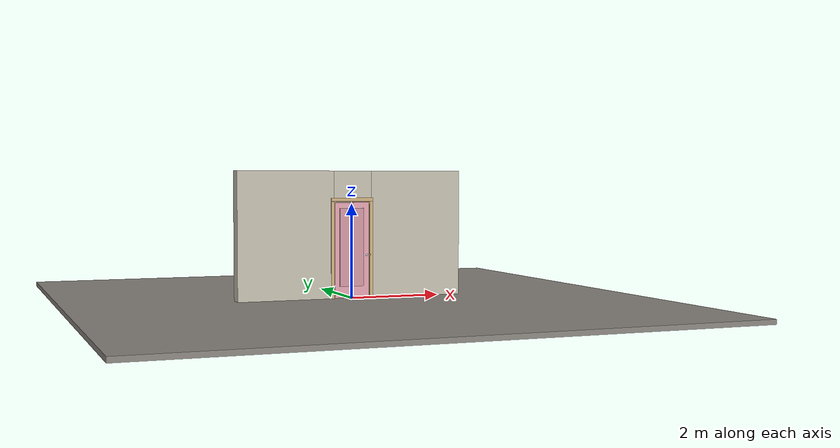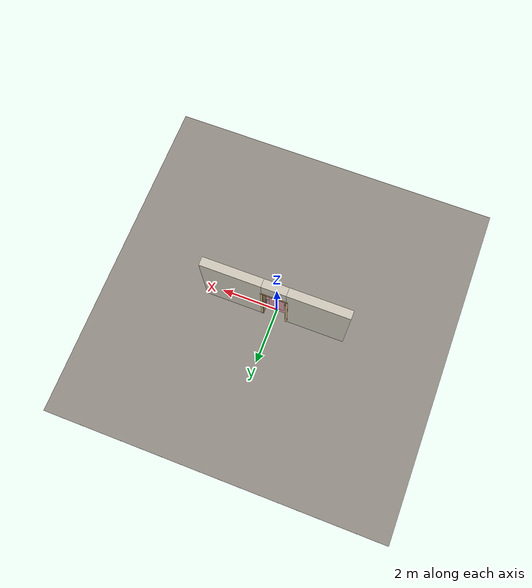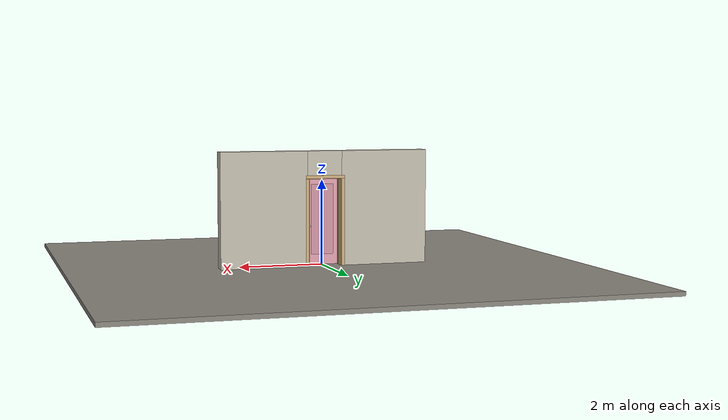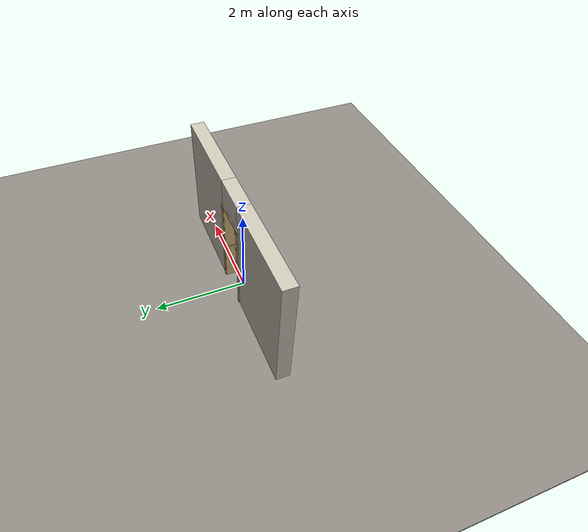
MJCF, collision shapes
<?xml version="1.0" ?>
<mujoco model="db0965_swing_single_full">
  <compiler angle="radian" meshdir="../../hardware" texturedir="../../textures" autolimits="true" inertiafromgeom="false"/>
  <option timestep="0.002" integrator="implicitfast" cone="elliptic" impratio="10" noslip_iterations="3">
    <flag multiccd="enable"/>
  </option>
  <size memory="16M"/>
  <default>
    <geom condim="4" solref="0.005 1" solimp="0.95 0.99 0.001"/>
    <joint solreflimit="0.005 1" solimplimit="0.95 0.99 0.001"/>
    <tendon solreflimit="0.005 1"/>
    <equality solref="0.002 1"/>
  </default>
  <visual>
    <headlight ambient="0.4 0.4 0.4" diffuse="0.7 0.7 0.7" specular="0.2 0.2 0.2"/>
    <quality shadowsize="4096"/>
    <map znear="0.01" zfar="60"/>
  </visual>
  <asset>
    <mesh name="hinge_c20a5829de" file="hinge_c20a5829de.obj"/>
    <mesh name="hinge_jamb_20499e6581" file="hinge_jamb_20499e6581.obj"/>
    <mesh name="knob_98a7916ed0" file="knob_98a7916ed0.obj"/>
    <material name="mat_floor" rgba="0.55 0.53 0.5 1" specular="0.2" shininess="0.15" reflectance="0"/>
    <material name="mat_wall" rgba="0.78 0.76 0.7 1" specular="0.2" shininess="0.1" reflectance="0"/>
    <material name="mat_hinge" rgba="0.55 0.56 0.58 1" specular="0.8" shininess="0.55" reflectance="0.4"/>
    <material name="mat_leaf" rgba="0.9 0.65 0.7 1" specular="0.2" shininess="0.41" reflectance="0"/>
    <material name="mat_leaf_panel" rgba="0.828 0.598 0.644 1" specular="0.2" shininess="0.41" reflectance="0"/>
    <material name="mat_op_glass_clear" rgba="0.85 0.92 0.95 0.25" specular="0.2" shininess="0.95" reflectance="0.1"/>
    <material name="mat_trim" rgba="0.85 0.66 0.3 1" specular="0.8" shininess="0.75" reflectance="0.4"/>
    <material name="mat_bolt" rgba="0.85 0.66 0.3 1" specular="0.8" shininess="0.75" reflectance="0.4"/>
    <material name="mat_frame" rgba="0.82 0.7 0.5 1" specular="0.2" shininess="0.45" reflectance="0"/>
    <texture name="skybox" type="skybox" builtin="gradient" rgb1="0.6 0.7 0.85" rgb2="0.9 0.92 0.95" width="256" height="256"/>
  </asset>
  <worldbody>
    <light name="sun" pos="1.5 -2.5 4" dir="-0.3 0.5 -0.8" directional="true" diffuse="0.8 0.8 0.8" specular="0.3 0.3 0.3" castshadow="true"/>
    <light name="fill" pos="-1.5 2.5 3" dir="0.3 -0.5 -0.7" directional="true" diffuse="0.35 0.35 0.4" castshadow="false"/>
    <camera name="robot_view" pos="0 -2.416687 1.734312" xyaxes="1 0 0 0 0.26963 0.962964" fovy="52"/>
    <camera name="far_view" pos="0 2.667687 1.734312" xyaxes="-1 0 0 0 -0.26963 0.962964" fovy="52"/>
    <camera name="iso" pos="1.932062 -2.009937 2.141063" xyaxes="0.741536 0.670913 0 -0.242917 0.268487 0.932151" fovy="46"/>
    <camera name="detail_handle" pos="0.5005 -0.8625 1.194" xyaxes="0.97561 0.219512 0 -0.070934 0.315262 0.94635" fovy="38"/>
    <geom name="floor" type="box" size="6 6 0.05" pos="0 0 -0.05" material="mat_floor" group="0" contype="1" conaffinity="1" friction="0.8 0.005 0.0001" density="2400"/>
    <geom name="wall_left" type="box" size="1.04825 0.15 1.35" pos="-1.45175 0.1255 1.35" material="mat_wall" group="0" contype="1" conaffinity="1" friction="0.6 0.005 0.0001" density="800"/>
    <geom name="wall_right" type="box" size="1.03325 0.15 1.35" pos="1.46675 0.1255 1.35" material="mat_wall" group="0" contype="1" conaffinity="1" friction="0.6 0.005 0.0001" density="800"/>
    <geom name="wall_header" type="box" size="0.4185 0.15 0.303" pos="0.015 0.1255 2.397" material="mat_wall" group="0" contype="1" conaffinity="1" friction="0.6 0.005 0.0001" density="800"/>
    <geom name="hinge_0_jamb" type="mesh" mesh="hinge_jamb_20499e6581" pos="-0.3815 -0.0245 0.259" material="mat_hinge" group="1" contype="0" conaffinity="0" density="7850"/>
    <geom name="hinge_1_jamb" type="mesh" mesh="hinge_jamb_20499e6581" pos="-0.3815 -0.0245 1.8506" material="mat_hinge" group="1" contype="0" conaffinity="0" density="7850"/>
    <geom name="jamb_hinge" type="box" size="0.0095 0.15 1.0225" pos="-0.394 0.1255 1.0225" material="mat_frame" group="0" contype="1" conaffinity="1" friction="0.6 0.005 0.0001" density="400"/>
    <geom name="strike_914_wall_n" type="box" size="0.0245 0.133825 0.0167" pos="0.409 0.141675 0.914" material="mat_frame" group="0" contype="1" conaffinity="1" friction="0.6 0.005 0.0001" density="400"/>
    <geom name="strike_914_wall_p" type="box" size="0.0245 0.008 0.0167" pos="0.409 -0.01585 0.914" material="mat_frame" group="0" contype="1" conaffinity="1" friction="0.6 0.005 0.0001" density="400"/>
    <geom name="strike_914_ramp" type="box" size="0.0245 0.01649 0.0167" pos="0.413636 -0.028673 0.914" quat="0.977148 0 0 0.212558" material="mat_frame" group="0" contype="1" conaffinity="1" friction="0.12 0.005 0.0001" density="400"/>
    <geom name="strike_914_back" type="box" size="0.01615 0.00785 0.0167" pos="0.41735 0 0.914" material="mat_frame" group="0" contype="1" conaffinity="1" friction="0.6 0.005 0.0001" density="400"/>
    <geom name="jamb_strike_0" type="box" size="0.0245 0.15 0.44865" pos="0.409 0.1255 0.44865" material="mat_frame" group="0" contype="1" conaffinity="1" friction="0.6 0.005 0.0001" density="400"/>
    <geom name="jamb_strike_1" type="box" size="0.0245 0.15 0.55715" pos="0.409 0.1255 1.48785" material="mat_frame" group="0" contype="1" conaffinity="1" friction="0.6 0.005 0.0001" density="400"/>
    <geom name="jamb_head" type="box" size="0.4185 0.15 0.0095" pos="0.015 0.1255 2.0545" material="mat_frame" group="0" contype="1" conaffinity="1" friction="0.6 0.005 0.0001" density="400"/>
    <geom name="head_stud" type="box" size="0.4185 0.15 0.015" pos="0.015 0.1255 2.079" material="mat_wall" group="0" contype="1" conaffinity="1" friction="0.6 0.005 0.0001" density="500"/>
    <geom name="stop_hinge" type="box" size="0.0055 0.016 1.0225" pos="-0.379 0.034 1.0225" material="mat_frame" group="0" contype="1" conaffinity="1" friction="0.6 0.005 0.0001" density="400"/>
    <geom name="stop_strike" type="box" size="0.0055 0.016 1.0225" pos="0.379 0.034 1.0225" material="mat_frame" group="0" contype="1" conaffinity="1" friction="0.6 0.005 0.0001" density="400"/>
    <geom name="stop_head" type="box" size="0.3845 0.016 0.0055" pos="0 0.034 2.0395" material="mat_frame" group="0" contype="1" conaffinity="1" friction="0.6 0.005 0.0001" density="400"/>
    <geom name="casing_l_n" type="box" size="0.035 0.008 1.032" pos="-0.4335 -0.0325 1.0225" material="mat_frame" group="2" contype="0" conaffinity="0" density="400"/>
    <geom name="casing_r_n" type="box" size="0.035 0.008 1.032" pos="0.4335 -0.0325 1.0225" material="mat_frame" group="2" contype="0" conaffinity="0" density="400"/>
    <geom name="casing_h_n" type="box" size="0.4685 0.008 0.035" pos="0 -0.0325 2.094" material="mat_frame" group="2" contype="0" conaffinity="0" density="400"/>
    <geom name="casing_l_p" type="box" size="0.035 0.008 1.032" pos="-0.4335 0.2835 1.0225" material="mat_frame" group="2" contype="0" conaffinity="0" density="400"/>
    <geom name="casing_r_p" type="box" size="0.035 0.008 1.032" pos="0.4335 0.2835 1.0225" material="mat_frame" group="2" contype="0" conaffinity="0" density="400"/>
    <geom name="casing_h_p" type="box" size="0.4685 0.008 0.035" pos="0 0.2835 2.094" material="mat_frame" group="2" contype="0" conaffinity="0" density="400"/>
    <site name="approach_point" pos="0 -1.5 0" quat="1 0 0 0" size="0.05" rgba="0.2 0.9 0.2 0.5" group="4"/>
    <site name="goal_point" pos="0 1.5 0" quat="1 0 0 0" size="0.05" rgba="0.2 0.9 0.2 0.5" group="4"/>
    <site name="door_plane_center" pos="0 0 1.0225" quat="1 0 0 0" size="0.02" rgba="0.2 0.9 0.2 0.5" group="4"/>
    <body name="leaf_riser" pos="-0.3845 0 0">
      <inertial pos="0.003 -0.0245 0.055" mass="0.174012" quat="0.707107 0 0.707107 0" diaginertia="0.000017053 0.00002732 0.00002732"/>
      <joint name="leaf_rise" type="slide" axis="0 0 1" limited="true" range="0 0.0176" damping="1" armature="0.5"/>
      <geom name="leaf_riser_marker" type="cylinder" size="0.014 0.018" pos="0.003 -0.0245 0.055" material="mat_hinge" group="1" contype="0" conaffinity="0" density="7850"/>
      <body name="leaf" pos="0 0 0">
        <inertial pos="0.37154 -0.000562 1.020917" mass="11.151307" quat="-0.499412 0.501397 -0.498574 -0.500612" diaginertia="0.576749085 3.904845357 4.479092458"/>
        <joint name="leaf_hinge" type="hinge" axis="0 0 -1" pos="0.003 -0.0245 0" limited="true" range="0 1.919862" damping="0.173726" frictionloss="6.282233" armature="0.02"/>
        <geom name="leaf_slab" type="box" size="0.381 0.0175 1.0108" pos="0.384 0 1.0198" material="mat_leaf" group="0" contype="1" conaffinity="1" friction="0.35 0.005 0.0001" density="1"/>
        <geom name="leaf_panel_0_n" type="box" size="0.271 0.003 0.829072" pos="0.384 -0.0205 1.080448" material="mat_leaf_panel" group="1" contype="0" conaffinity="0" density="1"/>
        <geom name="leaf_panel_0_p" type="box" size="0.271 0.003 0.829072" pos="0.384 0.0205 1.080448" material="mat_leaf_panel" group="1" contype="0" conaffinity="0" density="1"/>
        <geom name="hinge_0" type="mesh" mesh="hinge_c20a5829de" pos="0.003 -0.0245 0.259" material="mat_hinge" group="1" contype="0" conaffinity="0" density="7850"/>
        <geom name="hinge_1" type="mesh" mesh="hinge_c20a5829de" pos="0.003 -0.0245 1.8506" material="mat_hinge" group="1" contype="0" conaffinity="0" density="7850"/>
        <geom name="leaf_latch_bolt_faceplate" type="box" size="0.0006 0.01235 0.0267" pos="0.7644 0 0.914" material="mat_bolt" group="1" contype="0" conaffinity="0" density="8500"/>
        <site name="leaf_edge_mid" pos="0.765 0 1.0108" quat="1 0 0 0" size="0.02" rgba="0.2 0.9 0.2 0.5" group="4"/>
        <body name="leaf_handle" pos="0.705 0 0.914">
          <inertial pos="0 0.000502 0" mass="0.969385" quat="-0.5 0.5 -0.5 0.5" diaginertia="0.000215241 0.003035929 0.003035929"/>
          <joint name="leaf_handle_hinge" type="hinge" axis="0 -1 0" limited="true" range="0 0.07" damping="0.119588" frictionloss="0.032" stiffness="0.35" springref="-0.428571" armature="0.01"/>
          <geom name="leaf_handle_spindle" type="cylinder" size="0.006 0.0255" pos="0 0 0" quat="0.707107 -0.707107 0 0" material="mat_op_glass_clear" group="1" contype="0" conaffinity="0" density="7850"/>
          <geom name="leaf_handle_knob_n" type="mesh" mesh="knob_98a7916ed0" pos="0 -0.0175 0" quat="0.707107 0.707107 0 0" material="mat_op_glass_clear" group="1" contype="0" conaffinity="0" density="3000"/>
          <geom name="leaf_handle_knob_col_n" type="sphere" size="0.0234" pos="0 -0.0625 0" material="mat_op_glass_clear" group="0" contype="1" conaffinity="1" friction="0.9 0.01 0.0001" density="3000"/>
          <geom name="leaf_handle_knob_neck_n" type="cylinder" size="0.011 0.012" pos="0 -0.0295 0" quat="0.707107 -0.707107 0 0" material="mat_op_glass_clear" group="3" contype="1" conaffinity="1" rgba="0.8 0.3 0.3 0.25" friction="0.6 0.005 0.0001" density="3000"/>
          <geom name="leaf_handle_knob_p" type="mesh" mesh="knob_98a7916ed0" pos="0 0.0175 0" quat="-0.707107 0.707107 0 0" material="mat_op_glass_clear" group="1" contype="0" conaffinity="0" density="3000"/>
          <geom name="leaf_handle_knob_col_p" type="sphere" size="0.0234" pos="0 0.0625 0" material="mat_op_glass_clear" group="0" contype="1" conaffinity="1" friction="0.9 0.01 0.0001" density="3000"/>
          <geom name="leaf_handle_knob_neck_p" type="cylinder" size="0.011 0.012" pos="0 0.0295 0" quat="0.707107 -0.707107 0 0" material="mat_op_glass_clear" group="3" contype="1" conaffinity="1" rgba="0.8 0.3 0.3 0.25" friction="0.6 0.005 0.0001" density="3000"/>
          <geom name="leaf_handle_turn_button_p" type="cylinder" size="0.005 0.005" pos="0 0.0873 0" quat="0.707107 -0.707107 0 0" material="mat_trim" group="1" contype="0" conaffinity="0" density="7100"/>
          <site name="leaf_handle_grip_n" pos="0 -0.0625 0" quat="1 0 0 0" size="0.012" rgba="0.2 0.9 0.2 0.5" group="4"/>
          <site name="leaf_handle_grip_p" pos="0 0.0625 0" quat="1 0 0 0" size="0.012" rgba="0.2 0.9 0.2 0.5" group="4"/>
        </body>
        <body name="leaf_latch_bolt" pos="0.765 0 0.914">
          <inertial pos="-0.00865 0 0" mass="0.041419" quat="0.92388 -0.382683 0 0" diaginertia="0.000000798 0.000005598 0.000005598"/>
          <joint name="leaf_latch_bolt_slide" type="slide" axis="-1 0 0" limited="true" range="0 0.0127" damping="2" frictionloss="0.3" stiffness="300" springref="-0.008333" armature="0.1"/>
          <geom name="leaf_latch_bolt_capsule" type="capsule" size="0.00635 0.015" pos="-0.00865 0 0" quat="0.707107 0 0.707107 0" material="mat_bolt" group="0" contype="1" conaffinity="1" friction="0.2 0.005 0.0001" density="8500"/>
        </body>
      </body>
    </body>
  </worldbody>
  <tendon>
    <fixed name="leaf_latch_bolt_coupling" limited="true" range="0 10">
      <joint joint="leaf_latch_bolt_slide" coef="1"/>
      <joint joint="leaf_handle_hinge" coef="-0.019538"/>
    </fixed>
  </tendon>
  <equality>
    <joint name="leaf_rise_couple" joint1="leaf_rise" joint2="leaf_hinge" polycoef="0 0.005093 0 0 0" active="true"/>
  </equality>
  <sensor>
    <jointpos name="leaf_hinge_pos" joint="leaf_hinge"/>
    <jointvel name="leaf_hinge_vel" joint="leaf_hinge"/>
    <jointpos name="leaf_handle_hinge_pos" joint="leaf_handle_hinge"/>
    <jointvel name="leaf_handle_hinge_vel" joint="leaf_handle_hinge"/>
    <jointpos name="leaf_latch_bolt_slide_pos" joint="leaf_latch_bolt_slide"/>
    <jointvel name="leaf_latch_bolt_slide_vel" joint="leaf_latch_bolt_slide"/>
  </sensor>
</mujoco>
